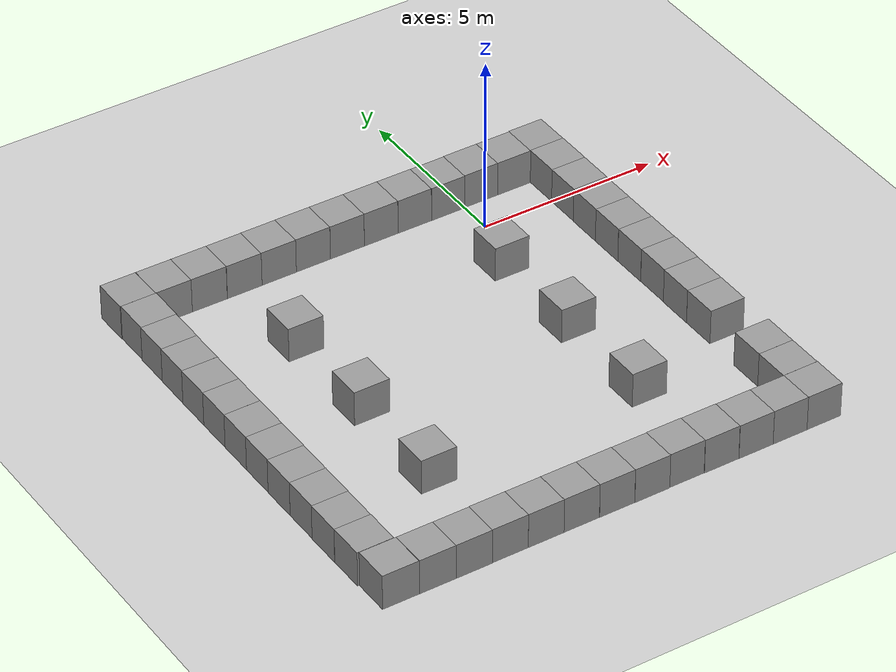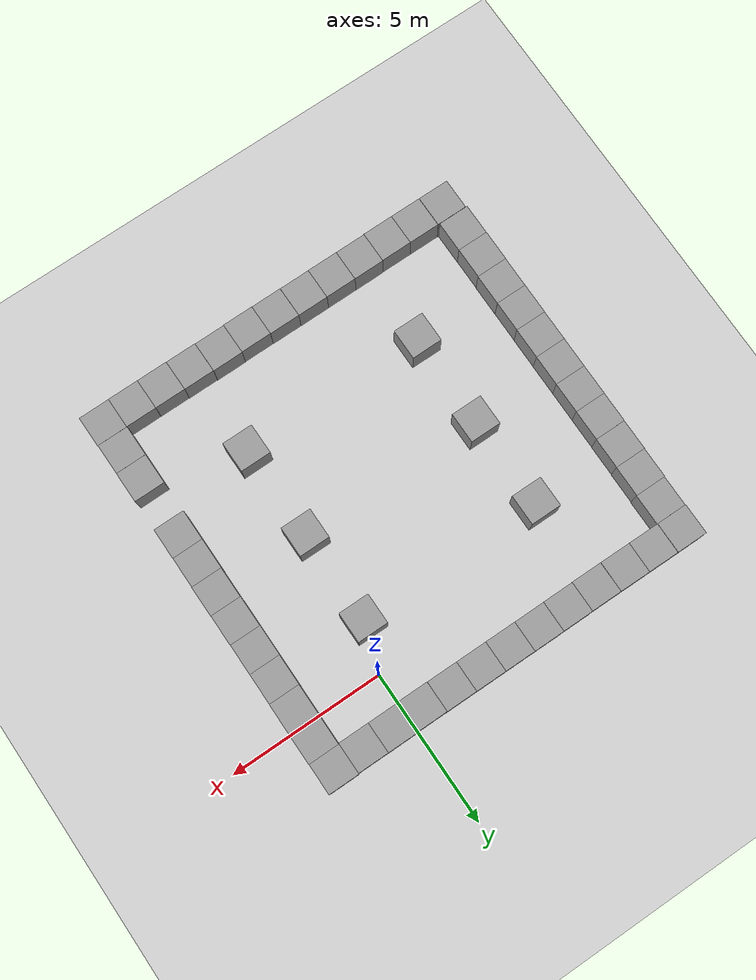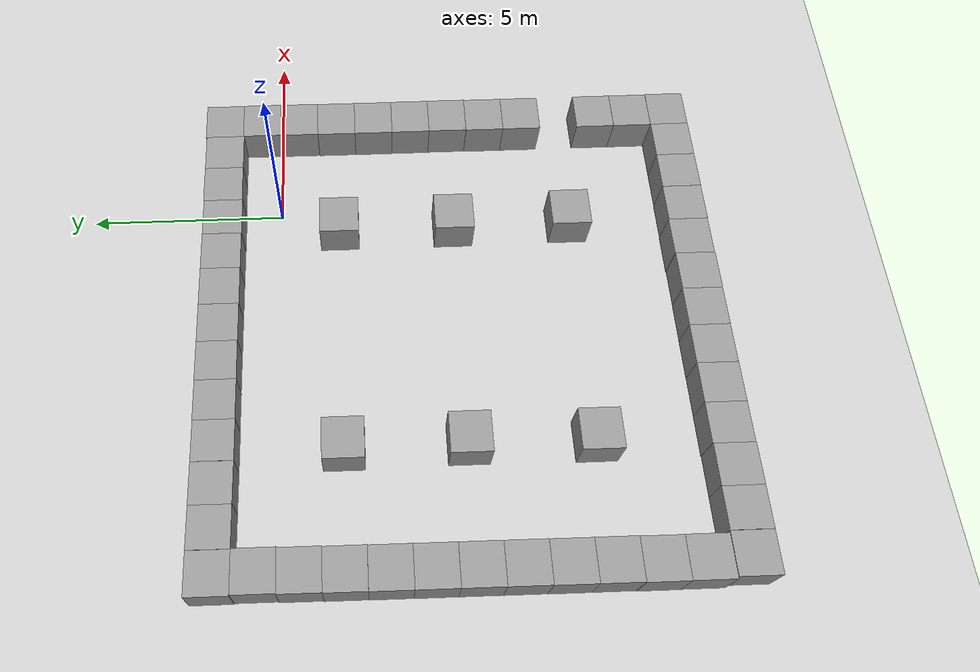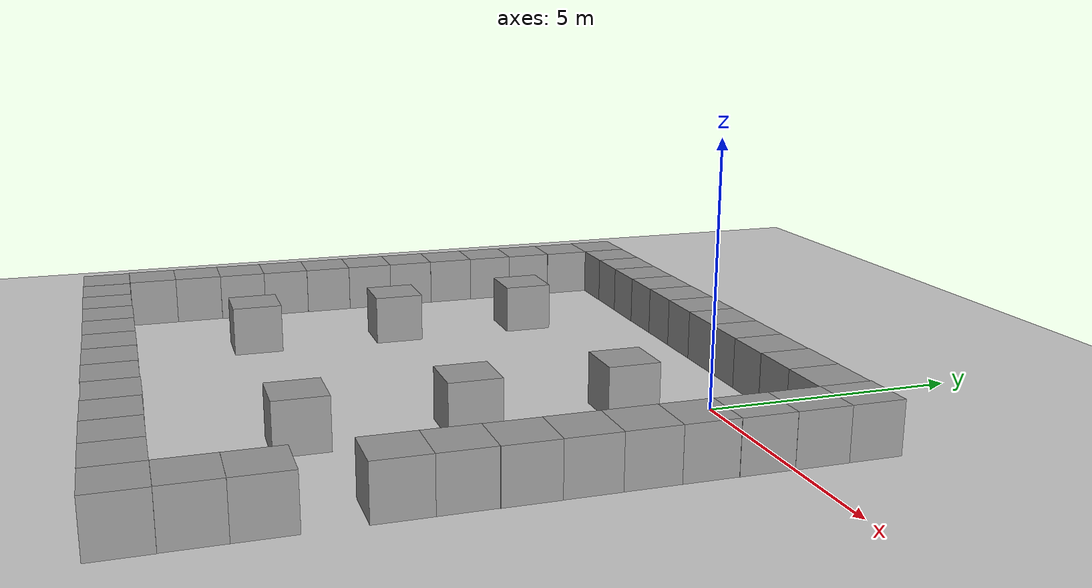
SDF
<sdf version="1.6">
 <world name="default">
  <light name="sun" type="directional">
   <pose>0 0 10 0 -0 0</pose>
   <diffuse>0.8 0.8 0.8 1</diffuse>
   <specular>0.1 0.1 0.1 1</specular>
   <attenuation>
    <range>1000</range>
    <constant>0.9</constant>
    <linear>0.01</linear>
    <quadratic>0.001</quadratic>
   </attenuation>
   <direction>-0.5 0.5 -1</direction>
  </light>
  <model name="ground_plane">
   <static>1</static>
   <link name="link">
    <collision name="collision">
     <geometry><plane><normal>0 0 1</normal><size>100 100</size></plane></geometry>
     <surface><friction><ode><mu>100</mu><mu2>50</mu2></ode></friction></surface>
    </collision>
    <visual name="visual">
     <cast_shadows>0</cast_shadows>
     <geometry><plane><normal>0 0 1</normal><size>100 100</size></plane></geometry>
     <material>
      <script><uri>file://media/materials/scripts/gazebo.material</uri><name>Gazebo/Grey</name></script>
     </material>
    </visual>
   </link>
  </model>
  <gravity>0 0 -9.8</gravity>
  <magnetic_field>6e-06 2.3e-05 -4.2e-05</magnetic_field>
  <atmosphere type="adiabatic"/>
  <physics name="default_physics" default="0" type="ode">
   <max_step_size>0.001</max_step_size>
   <real_time_factor>1</real_time_factor>
   <real_time_update_rate>1000</real_time_update_rate>
  </physics>
  <scene><ambient>0.4 0.4 0.4 1</ambient><background>0.7 0.7 0.7 1</background><shadows>1</shadows></scene>
  <spherical_coordinates>
   <surface_model>EARTH_WGS84</surface_model>
   <latitude_deg>0</latitude_deg>
   <longitude_deg>0</longitude_deg>
   <elevation>0</elevation>
   <heading_deg>0</heading_deg>
  </spherical_coordinates>
  <model name="unit_box_0_3">
   <pose>-0.485016 1.46415 0.499995 0 -1e-05 -0.000431</pose>
   <link name="link">
    <inertial>
     <mass>1</mass>
     <inertia>
      <ixx>0.166667</ixx>
      <ixy>0</ixy>
      <ixz>0</ixz>
      <iyy>0.166667</iyy>
      <iyz>0</iyz>
      <izz>0.166667</izz>
     </inertia>
    </inertial>
    <collision name="collision"><geometry><box><size>1 1 1</size></box></geometry></collision>
    <visual name="visual">
     <geometry><box><size>1 1 1</size></box></geometry>
     <material>
      <script><name>Gazebo/Grey</name><uri>file://media/materials/scripts/gazebo.material</uri></script>
     </material>
    </visual>
   </link>
  </model>
  <model name="unit_box_0_4">
   <pose>0.515013 1.47741 0.499995 0 1e-05 -0.000414</pose>
   <link name="link">
    <inertial>
     <mass>1</mass>
     <inertia>
      <ixx>0.166667</ixx>
      <ixy>0</ixy>
      <ixz>0</ixz>
      <iyy>0.166667</iyy>
      <iyz>0</iyz>
      <izz>0.166667</izz>
     </inertia>
    </inertial>
    <collision name="collision"><geometry><box><size>1 1 1</size></box></geometry></collision>
    <visual name="visual">
     <geometry><box><size>1 1 1</size></box></geometry>
     <material>
      <script><name>Gazebo/Grey</name><uri>file://media/materials/scripts/gazebo.material</uri></script>
     </material>
    </visual>
   </link>
  </model>
  <model name="unit_box_0_5">
   <pose>1.515 1.47529 0.499995 0 -1e-05 -0.000414</pose>
   <link name="link">
    <inertial>
     <mass>1</mass>
     <inertia>
      <ixx>0.166667</ixx>
      <ixy>0</ixy>
      <ixz>0</ixz>
      <iyy>0.166667</iyy>
      <iyz>0</iyz>
      <izz>0.166667</izz>
     </inertia>
    </inertial>
    <collision name="collision"><geometry><box><size>1 1 1</size></box></geometry></collision>
    <visual name="visual">
     <geometry><box><size>1 1 1</size></box></geometry>
     <material>
      <script><name>Gazebo/Grey</name><uri>file://media/materials/scripts/gazebo.material</uri></script>
     </material>
    </visual>
   </link>
  </model>
  <model name="unit_box_0_6">
   <pose>-1.48541 1.46962 0.499995 -1e-05 -0 -0.001228</pose>
   <link name="link">
    <inertial>
     <mass>1</mass>
     <inertia>
      <ixx>0.166667</ixx>
      <ixy>0</ixy>
      <ixz>0</ixz>
      <iyy>0.166667</iyy>
      <iyz>0</iyz>
      <izz>0.166667</izz>
     </inertia>
    </inertial>
    <collision name="collision"><geometry><box><size>1 1 1</size></box></geometry></collision>
    <visual name="visual">
     <geometry><box><size>1 1 1</size></box></geometry>
     <material>
      <script><name>Gazebo/Grey</name><uri>file://media/materials/scripts/gazebo.material</uri></script>
     </material>
    </visual>
   </link>
  </model>
  <model name="unit_box_0_7">
   <pose>-2.48543 1.47308 0.5 0 0 -0.001272</pose>
   <link name="link">
    <inertial>
     <mass>1</mass>
     <inertia>
      <ixx>0.166667</ixx>
      <ixy>0</ixy>
      <ixz>0</ixz>
      <iyy>0.166667</iyy>
      <iyz>0</iyz>
      <izz>0.166667</izz>
     </inertia>
    </inertial>
    <collision name="collision"><geometry><box><size>1 1 1</size></box></geometry></collision>
    <visual name="visual">
     <geometry><box><size>1 1 1</size></box></geometry>
     <material>
      <script><name>Gazebo/Grey</name><uri>file://media/materials/scripts/gazebo.material</uri></script>
     </material>
    </visual>
   </link>
  </model>
  <model name="unit_box_0_8">
   <pose>2.51507 1.4973 0.5 0 0 -0.00034</pose>
   <link name="link">
    <inertial>
     <mass>1</mass>
     <inertia>
      <ixx>0.166667</ixx>
      <ixy>0</ixy>
      <ixz>0</ixz>
      <iyy>0.166667</iyy>
      <iyz>0</iyz>
      <izz>0.166667</izz>
     </inertia>
    </inertial>
    <collision name="collision"><geometry><box><size>1 1 1</size></box></geometry></collision>
    <visual name="visual">
     <geometry><box><size>1 1 1</size></box></geometry>
     <material>
      <script><name>Gazebo/Grey</name><uri>file://media/materials/scripts/gazebo.material</uri></script>
     </material>
    </visual>
   </link>
  </model>
  <model name="unit_box_0_9">
   <pose>-3.48544 1.47527 0.499995 -1e-05 -0 -0.001286</pose>
   <link name="link">
    <inertial>
     <mass>1</mass>
     <inertia>
      <ixx>0.166667</ixx>
      <ixy>0</ixy>
      <ixz>0</ixz>
      <iyy>0.166667</iyy>
      <iyz>0</iyz>
      <izz>0.166667</izz>
     </inertia>
    </inertial>
    <collision name="collision"><geometry><box><size>1 1 1</size></box></geometry></collision>
    <visual name="visual">
     <geometry><box><size>1 1 1</size></box></geometry>
     <material>
      <script><name>Gazebo/Grey</name><uri>file://media/materials/scripts/gazebo.material</uri></script>
     </material>
    </visual>
   </link>
  </model>
  <model name="unit_box_0_10">
   <pose>-4.48545 1.47864 0.499995 1e-05 0 -0.001306</pose>
   <link name="link">
    <inertial>
     <mass>1</mass>
     <inertia>
      <ixx>0.166667</ixx>
      <ixy>0</ixy>
      <ixz>0</ixz>
      <iyy>0.166667</iyy>
      <iyz>0</iyz>
      <izz>0.166667</izz>
     </inertia>
    </inertial>
    <collision name="collision"><geometry><box><size>1 1 1</size></box></geometry></collision>
    <visual name="visual">
     <geometry><box><size>1 1 1</size></box></geometry>
     <material>
      <script><name>Gazebo/Grey</name><uri>file://media/materials/scripts/gazebo.material</uri></script>
     </material>
    </visual>
   </link>
  </model>
  <model name="unit_box_0_11">
   <pose>-5.48546 1.47609 0.499995 -0 1e-05 -0.001308</pose>
   <link name="link">
    <inertial>
     <mass>1</mass>
     <inertia>
      <ixx>0.166667</ixx>
      <ixy>0</ixy>
      <ixz>0</ixz>
      <iyy>0.166667</iyy>
      <iyz>0</iyz>
      <izz>0.166667</izz>
     </inertia>
    </inertial>
    <collision name="collision"><geometry><box><size>1 1 1</size></box></geometry></collision>
    <visual name="visual">
     <geometry><box><size>1 1 1</size></box></geometry>
     <material>
      <script><name>Gazebo/Grey</name><uri>file://media/materials/scripts/gazebo.material</uri></script>
     </material>
    </visual>
   </link>
  </model>
  <model name="unit_box_0_28">
   <pose>2.5108 -6.50287 0.499995 0 -1e-05 -8.8e-05</pose>
   <link name="link">
    <inertial>
     <mass>1</mass>
     <inertia>
      <ixx>0.166667</ixx>
      <ixy>0</ixy>
      <ixz>0</ixz>
      <iyy>0.166667</iyy>
      <iyz>0</iyz>
      <izz>0.166667</izz>
     </inertia>
    </inertial>
    <collision name="collision"><geometry><box><size>1 1 1</size></box></geometry></collision>
    <visual name="visual">
     <geometry><box><size>1 1 1</size></box></geometry>
     <material>
      <script><name>Gazebo/Grey</name><uri>file://media/materials/scripts/gazebo.material</uri></script>
     </material>
    </visual>
   </link>
  </model>
  <model name="unit_box_0_29">
   <pose>2.5083 -5.50283 0.5 0 0 -0.000153</pose>
   <link name="link">
    <inertial>
     <mass>1</mass>
     <inertia>
      <ixx>0.166667</ixx>
      <ixy>0</ixy>
      <ixz>0</ixz>
      <iyy>0.166667</iyy>
      <iyz>0</iyz>
      <izz>0.166667</izz>
     </inertia>
    </inertial>
    <collision name="collision"><geometry><box><size>1 1 1</size></box></geometry></collision>
    <visual name="visual">
     <geometry><box><size>1 1 1</size></box></geometry>
     <material>
      <script><name>Gazebo/Grey</name><uri>file://media/materials/scripts/gazebo.material</uri></script>
     </material>
    </visual>
   </link>
  </model>
  <model name="unit_box_0_30">
   <pose>2.5175 -4.50282 0.5 0 0 -0.000175</pose>
   <link name="link">
    <inertial>
     <mass>1</mass>
     <inertia>
      <ixx>0.166667</ixx>
      <ixy>0</ixy>
      <ixz>0</ixz>
      <iyy>0.166667</iyy>
      <iyz>0</iyz>
      <izz>0.166667</izz>
     </inertia>
    </inertial>
    <collision name="collision"><geometry><box><size>1 1 1</size></box></geometry></collision>
    <visual name="visual">
     <geometry><box><size>1 1 1</size></box></geometry>
     <material>
      <script><name>Gazebo/Grey</name><uri>file://media/materials/scripts/gazebo.material</uri></script>
     </material>
    </visual>
   </link>
  </model>
  <model name="unit_box_0_31">
   <pose>2.51174 -3.50281 0.499996 -9e-06 -0 -0.000175</pose>
   <link name="link">
    <inertial>
     <mass>1</mass>
     <inertia>
      <ixx>0.166667</ixx>
      <ixy>0</ixy>
      <ixz>0</ixz>
      <iyy>0.166667</iyy>
      <iyz>0</iyz>
      <izz>0.166667</izz>
     </inertia>
    </inertial>
    <collision name="collision"><geometry><box><size>1 1 1</size></box></geometry></collision>
    <visual name="visual">
     <geometry><box><size>1 1 1</size></box></geometry>
     <material>
      <script><name>Gazebo/Grey</name><uri>file://media/materials/scripts/gazebo.material</uri></script>
     </material>
    </visual>
   </link>
  </model>
  <model name="unit_box_0_32">
   <pose>2.50817 -2.50281 0.499995 -1e-05 -0 -0.000176</pose>
   <link name="link">
    <inertial>
     <mass>1</mass>
     <inertia>
      <ixx>0.166667</ixx>
      <ixy>0</ixy>
      <ixz>0</ixz>
      <iyy>0.166667</iyy>
      <iyz>0</iyz>
      <izz>0.166667</izz>
     </inertia>
    </inertial>
    <collision name="collision"><geometry><box><size>1 1 1</size></box></geometry></collision>
    <visual name="visual">
     <geometry><box><size>1 1 1</size></box></geometry>
     <material>
      <script><name>Gazebo/Grey</name><uri>file://media/materials/scripts/gazebo.material</uri></script>
     </material>
    </visual>
   </link>
  </model>
  <model name="unit_box_0_34">
   <pose>2.50946 -1.50281 0.499995 1e-05 -0 -0.00017</pose>
   <link name="link">
    <inertial>
     <mass>1</mass>
     <inertia>
      <ixx>0.166667</ixx>
      <ixy>0</ixy>
      <ixz>0</ixz>
      <iyy>0.166667</iyy>
      <iyz>0</iyz>
      <izz>0.166667</izz>
     </inertia>
    </inertial>
    <collision name="collision"><geometry><box><size>1 1 1</size></box></geometry></collision>
    <visual name="visual">
     <geometry><box><size>1 1 1</size></box></geometry>
     <material>
      <script><name>Gazebo/Grey</name><uri>file://media/materials/scripts/gazebo.material</uri></script>
     </material>
    </visual>
   </link>
  </model>
  <model name="unit_box_0_35">
   <pose>2.51729 -0.5028 0.499995 -0 1e-05 -0.000172</pose>
   <link name="link">
    <inertial>
     <mass>1</mass>
     <inertia>
      <ixx>0.166667</ixx>
      <ixy>0</ixy>
      <ixz>0</ixz>
      <iyy>0.166667</iyy>
      <iyz>0</iyz>
      <izz>0.166667</izz>
     </inertia>
    </inertial>
    <collision name="collision"><geometry><box><size>1 1 1</size></box></geometry></collision>
    <visual name="visual">
     <geometry><box><size>1 1 1</size></box></geometry>
     <material>
      <script><name>Gazebo/Grey</name><uri>file://media/materials/scripts/gazebo.material</uri></script>
     </material>
    </visual>
   </link>
  </model>
  <model name="unit_box_0_36">
   <pose>2.52059 0.497225 0.5 0 0 -0.000211</pose>
   <link name="link">
    <inertial>
     <mass>1</mass>
     <inertia>
      <ixx>0.166667</ixx>
      <ixy>0</ixy>
      <ixz>0</ixz>
      <iyy>0.166667</iyy>
      <iyz>0</iyz>
      <izz>0.166667</izz>
     </inertia>
    </inertial>
    <collision name="collision"><geometry><box><size>1 1 1</size></box></geometry></collision>
    <visual name="visual">
     <geometry><box><size>1 1 1</size></box></geometry>
     <material>
      <script><name>Gazebo/Grey</name><uri>file://media/materials/scripts/gazebo.material</uri></script>
     </material>
    </visual>
   </link>
  </model>
  <model name="unit_box_0">
   <pose>-0.515203 -1.52722 0.499995 0 -1e-05 5e-06</pose>
   <link name="link">
    <inertial>
     <mass>1</mass>
     <inertia>
      <ixx>0.166667</ixx>
      <ixy>0</ixy>
      <ixz>0</ixz>
      <iyy>0.166667</iyy>
      <iyz>0</iyz>
      <izz>0.166667</izz>
     </inertia>
    </inertial>
    <collision name="collision"><geometry><box><size>1 1 1</size></box></geometry></collision>
    <visual name="visual">
     <geometry><box><size>1 1 1</size></box></geometry>
     <material>
      <script><name>Gazebo/Grey</name><uri>file://media/materials/scripts/gazebo.material</uri></script>
     </material>
    </visual>
   </link>
  </model>
  <model name="unit_box_1">
   <pose>-0.520417 -4.49983 0.499995 0 -1e-05 5e-06</pose>
   <link name="link">
    <inertial>
     <mass>1</mass>
     <inertia>
      <ixx>0.166667</ixx>
      <ixy>0</ixy>
      <ixz>0</ixz>
      <iyy>0.166667</iyy>
      <iyz>0</iyz>
      <izz>0.166667</izz>
     </inertia>
    </inertial>
    <collision name="collision"><geometry><box><size>1 1 1</size></box></geometry></collision>
    <visual name="visual">
     <geometry><box><size>1 1 1</size></box></geometry>
     <material>
      <script><name>Gazebo/Grey</name><uri>file://media/materials/scripts/gazebo.material</uri></script>
     </material>
    </visual>
   </link>
  </model>
  <model name="unit_box_2">
   <pose>-0.495703 -7.5225 0.499995 1e-05 -0 0.000151</pose>
   <link name="link">
    <inertial>
     <mass>1</mass>
     <inertia>
      <ixx>0.166667</ixx>
      <ixy>0</ixy>
      <ixz>0</ixz>
      <iyy>0.166667</iyy>
      <iyz>0</iyz>
      <izz>0.166667</izz>
     </inertia>
    </inertial>
    <collision name="collision"><geometry><box><size>1 1 1</size></box></geometry></collision>
    <visual name="visual">
     <geometry><box><size>1 1 1</size></box></geometry>
     <material>
      <script><name>Gazebo/Grey</name><uri>file://media/materials/scripts/gazebo.material</uri></script>
     </material>
    </visual>
   </link>
  </model>
  <model name="unit_box_4">
   <pose>-1.47392 -10.5015 0.499995 0 -1e-05 0.003189</pose>
   <link name="link">
    <inertial>
     <mass>1</mass>
     <inertia>
      <ixx>0.166667</ixx>
      <ixy>0</ixy>
      <ixz>0</ixz>
      <iyy>0.166667</iyy>
      <iyz>0</iyz>
      <izz>0.166667</izz>
     </inertia>
    </inertial>
    <collision name="collision"><geometry><box><size>1 1 1</size></box></geometry></collision>
    <visual name="visual">
     <geometry><box><size>1 1 1</size></box></geometry>
     <material>
      <script><name>Gazebo/Grey</name><uri>file://media/materials/scripts/gazebo.material</uri></script>
     </material>
    </visual>
   </link>
  </model>
  <model name="unit_box_5_0">
   <pose>-0.473788 -10.5096 0.499995 0 -1e-05 0.003101</pose>
   <link name="link">
    <inertial>
     <mass>1</mass>
     <inertia>
      <ixx>0.166667</ixx>
      <ixy>0</ixy>
      <ixz>0</ixz>
      <iyy>0.166667</iyy>
      <iyz>0</iyz>
      <izz>0.166667</izz>
     </inertia>
    </inertial>
    <collision name="collision"><geometry><box><size>1 1 1</size></box></geometry></collision>
    <visual name="visual">
     <geometry><box><size>1 1 1</size></box></geometry>
     <material>
      <script><name>Gazebo/Grey</name><uri>file://media/materials/scripts/gazebo.material</uri></script>
     </material>
    </visual>
   </link>
  </model>
  <model name="unit_box_5_1">
   <pose>0.526444 -10.5137 0.499995 1e-05 -0 0.003186</pose>
   <link name="link">
    <inertial>
     <mass>1</mass>
     <inertia>
      <ixx>0.166667</ixx>
      <ixy>0</ixy>
      <ixz>0</ixz>
      <iyy>0.166667</iyy>
      <iyz>0</iyz>
      <izz>0.166667</izz>
     </inertia>
    </inertial>
    <collision name="collision"><geometry><box><size>1 1 1</size></box></geometry></collision>
    <visual name="visual">
     <geometry><box><size>1 1 1</size></box></geometry>
     <material>
      <script><name>Gazebo/Grey</name><uri>file://media/materials/scripts/gazebo.material</uri></script>
     </material>
    </visual>
   </link>
  </model>
  <model name="unit_box_5_2">
   <pose>1.52652 -10.5118 0.499995 -1e-05 -0 0.003169</pose>
   <link name="link">
    <inertial>
     <mass>1</mass>
     <inertia>
      <ixx>0.166667</ixx>
      <ixy>0</ixy>
      <ixz>0</ixz>
      <iyy>0.166667</iyy>
      <iyz>0</iyz>
      <izz>0.166667</izz>
     </inertia>
    </inertial>
    <collision name="collision"><geometry><box><size>1 1 1</size></box></geometry></collision>
    <visual name="visual">
     <geometry><box><size>1 1 1</size></box></geometry>
     <material>
      <script><name>Gazebo/Grey</name><uri>file://media/materials/scripts/gazebo.material</uri></script>
     </material>
    </visual>
   </link>
  </model>
  <model name="unit_box_5_3">
   <pose>2.51398 -8.50358 0.499995 -0 -1e-05 0.001292</pose>
   <link name="link">
    <inertial>
     <mass>1</mass>
     <inertia>
      <ixx>0.166667</ixx>
      <ixy>0</ixy>
      <ixz>0</ixz>
      <iyy>0.166667</iyy>
      <iyz>0</iyz>
      <izz>0.166667</izz>
     </inertia>
    </inertial>
    <collision name="collision"><geometry><box><size>1 1 1</size></box></geometry></collision>
    <visual name="visual">
     <geometry><box><size>1 1 1</size></box></geometry>
     <material>
      <script><name>Gazebo/Grey</name><uri>file://media/materials/scripts/gazebo.material</uri></script>
     </material>
    </visual>
   </link>
  </model>
  <model name="unit_box_5_4">
   <pose>-2.47389 -10.5161 0.499995 0 -1e-05 0.003189</pose>
   <link name="link">
    <inertial>
     <mass>1</mass>
     <inertia>
      <ixx>0.166667</ixx>
      <ixy>0</ixy>
      <ixz>0</ixz>
      <iyy>0.166667</iyy>
      <iyz>0</iyz>
      <izz>0.166667</izz>
     </inertia>
    </inertial>
    <collision name="collision"><geometry><box><size>1 1 1</size></box></geometry></collision>
    <visual name="visual">
     <geometry><box><size>1 1 1</size></box></geometry>
     <material>
      <script><name>Gazebo/Grey</name><uri>file://media/materials/scripts/gazebo.material</uri></script>
     </material>
    </visual>
   </link>
  </model>
  <model name="unit_box_5_5">
   <pose>2.5146 -9.50428 0.499995 0 -1e-05 0.002692</pose>
   <link name="link">
    <inertial>
     <mass>1</mass>
     <inertia>
      <ixx>0.166667</ixx>
      <ixy>0</ixy>
      <ixz>0</ixz>
      <iyy>0.166667</iyy>
      <iyz>0</iyz>
      <izz>0.166667</izz>
     </inertia>
    </inertial>
    <collision name="collision"><geometry><box><size>1 1 1</size></box></geometry></collision>
    <visual name="visual">
     <geometry><box><size>1 1 1</size></box></geometry>
     <material>
      <script><name>Gazebo/Grey</name><uri>file://media/materials/scripts/gazebo.material</uri></script>
     </material>
    </visual>
   </link>
  </model>
  <model name="unit_box_5_6">
   <pose>2.52662 -10.5055 0.499995 1e-05 -0 0.003368</pose>
   <link name="link">
    <inertial>
     <mass>1</mass>
     <inertia>
      <ixx>0.166667</ixx>
      <ixy>0</ixy>
      <ixz>0</ixz>
      <iyy>0.166667</iyy>
      <iyz>0</iyz>
      <izz>0.166667</izz>
     </inertia>
    </inertial>
    <collision name="collision"><geometry><box><size>1 1 1</size></box></geometry></collision>
    <visual name="visual">
     <geometry><box><size>1 1 1</size></box></geometry>
     <material>
      <script><name>Gazebo/Grey</name><uri>file://media/materials/scripts/gazebo.material</uri></script>
     </material>
    </visual>
   </link>
  </model>
  <model name="unit_box_5_7">
   <pose>-6.48559 1.47191 0.499995 0 -1e-05 -0.001453</pose>
   <link name="link">
    <inertial>
     <mass>1</mass>
     <inertia>
      <ixx>0.166667</ixx>
      <ixy>0</ixy>
      <ixz>0</ixz>
      <iyy>0.166667</iyy>
      <iyz>0</iyz>
      <izz>0.166667</izz>
     </inertia>
    </inertial>
    <collision name="collision"><geometry><box><size>1 1 1</size></box></geometry></collision>
    <visual name="visual">
     <geometry><box><size>1 1 1</size></box></geometry>
     <material>
      <script><name>Gazebo/Grey</name><uri>file://media/materials/scripts/gazebo.material</uri></script>
     </material>
    </visual>
   </link>
  </model>
  <model name="unit_box_5_8">
   <pose>-7.48806 1.47602 0.499995 0 1e-05 -0.006394</pose>
   <link name="link">
    <inertial>
     <mass>1</mass>
     <inertia>
      <ixx>0.166667</ixx>
      <ixy>0</ixy>
      <ixz>0</ixz>
      <iyy>0.166667</iyy>
      <iyz>0</iyz>
      <izz>0.166667</izz>
     </inertia>
    </inertial>
    <collision name="collision"><geometry><box><size>1 1 1</size></box></geometry></collision>
    <visual name="visual">
     <geometry><box><size>1 1 1</size></box></geometry>
     <material>
      <script><name>Gazebo/Grey</name><uri>file://media/materials/scripts/gazebo.material</uri></script>
     </material>
    </visual>
   </link>
  </model>
  <model name="unit_box_5_9">
   <pose>-8.48807 1.4804 0.499995 0 1e-05 -0.006392</pose>
   <link name="link">
    <inertial>
     <mass>1</mass>
     <inertia>
      <ixx>0.166667</ixx>
      <ixy>0</ixy>
      <ixz>0</ixz>
      <iyy>0.166667</iyy>
      <iyz>0</iyz>
      <izz>0.166667</izz>
     </inertia>
    </inertial>
    <collision name="collision"><geometry><box><size>1 1 1</size></box></geometry></collision>
    <visual name="visual">
     <geometry><box><size>1 1 1</size></box></geometry>
     <material>
      <script><name>Gazebo/Grey</name><uri>file://media/materials/scripts/gazebo.material</uri></script>
     </material>
    </visual>
   </link>
  </model>
  <model name="unit_box_5_10">
   <pose>-9.49113 1.48363 0.499995 -0 -1e-05 -0.000285</pose>
   <link name="link">
    <inertial>
     <mass>1</mass>
     <inertia>
      <ixx>0.166667</ixx>
      <ixy>0</ixy>
      <ixz>0</ixz>
      <iyy>0.166667</iyy>
      <iyz>0</iyz>
      <izz>0.166667</izz>
     </inertia>
    </inertial>
    <collision name="collision"><geometry><box><size>1 1 1</size></box></geometry></collision>
    <visual name="visual">
     <geometry><box><size>1 1 1</size></box></geometry>
     <material>
      <script><name>Gazebo/Grey</name><uri>file://media/materials/scripts/gazebo.material</uri></script>
     </material>
    </visual>
   </link>
  </model>
  <model name="unit_box_5_11">
   <pose>-3.47405 -10.5125 0.499995 -1e-05 0 0.0031</pose>
   <link name="link">
    <inertial>
     <mass>1</mass>
     <inertia>
      <ixx>0.166667</ixx>
      <ixy>0</ixy>
      <ixz>0</ixz>
      <iyy>0.166667</iyy>
      <iyz>0</iyz>
      <izz>0.166667</izz>
     </inertia>
    </inertial>
    <collision name="collision"><geometry><box><size>1 1 1</size></box></geometry></collision>
    <visual name="visual">
     <geometry><box><size>1 1 1</size></box></geometry>
     <material>
      <script><name>Gazebo/Grey</name><uri>file://media/materials/scripts/gazebo.material</uri></script>
     </material>
    </visual>
   </link>
  </model>
  <model name="unit_box_5_12">
   <pose>-4.47461 -10.5113 0.499995 0 1e-05 0.002114</pose>
   <link name="link">
    <inertial>
     <mass>1</mass>
     <inertia>
      <ixx>0.166667</ixx>
      <ixy>0</ixy>
      <ixz>0</ixz>
      <iyy>0.166667</iyy>
      <iyz>0</iyz>
      <izz>0.166667</izz>
     </inertia>
    </inertial>
    <collision name="collision"><geometry><box><size>1 1 1</size></box></geometry></collision>
    <visual name="visual">
     <geometry><box><size>1 1 1</size></box></geometry>
     <material>
      <script><name>Gazebo/Grey</name><uri>file://media/materials/scripts/gazebo.material</uri></script>
     </material>
    </visual>
   </link>
  </model>
  <model name="unit_box_5_13">
   <pose>-5.4749 -10.5159 0.499995 0 -1e-05 0.001543</pose>
   <link name="link">
    <inertial>
     <mass>1</mass>
     <inertia>
      <ixx>0.166667</ixx>
      <ixy>0</ixy>
      <ixz>0</ixz>
      <iyy>0.166667</iyy>
      <iyz>0</iyz>
      <izz>0.166667</izz>
     </inertia>
    </inertial>
    <collision name="collision"><geometry><box><size>1 1 1</size></box></geometry></collision>
    <visual name="visual">
     <geometry><box><size>1 1 1</size></box></geometry>
     <material>
      <script><name>Gazebo/Grey</name><uri>file://media/materials/scripts/gazebo.material</uri></script>
     </material>
    </visual>
   </link>
  </model>
  <model name="unit_box_5_14">
   <pose>-6.47493 -10.5167 0.499995 0 1e-05 0.001475</pose>
   <link name="link">
    <inertial>
     <mass>1</mass>
     <inertia>
      <ixx>0.166667</ixx>
      <ixy>0</ixy>
      <ixz>0</ixz>
      <iyy>0.166667</iyy>
      <iyz>0</iyz>
      <izz>0.166667</izz>
     </inertia>
    </inertial>
    <collision name="collision"><geometry><box><size>1 1 1</size></box></geometry></collision>
    <visual name="visual">
     <geometry><box><size>1 1 1</size></box></geometry>
     <material>
      <script><name>Gazebo/Grey</name><uri>file://media/materials/scripts/gazebo.material</uri></script>
     </material>
    </visual>
   </link>
  </model>
  <model name="unit_box_5_15">
   <pose>-7.47495 -10.5285 0.499995 0 -1e-05 0.001472</pose>
   <link name="link">
    <inertial>
     <mass>1</mass>
     <inertia>
      <ixx>0.166667</ixx>
      <ixy>0</ixy>
      <ixz>0</ixz>
      <iyy>0.166667</iyy>
      <iyz>0</iyz>
      <izz>0.166667</izz>
     </inertia>
    </inertial>
    <collision name="collision"><geometry><box><size>1 1 1</size></box></geometry></collision>
    <visual name="visual">
     <geometry><box><size>1 1 1</size></box></geometry>
     <material>
      <script><name>Gazebo/Grey</name><uri>file://media/materials/scripts/gazebo.material</uri></script>
     </material>
    </visual>
   </link>
  </model>
  <model name="unit_box_5_16">
   <pose>-8.47495 -10.5288 0.499995 -0 1e-05 0.001472</pose>
   <link name="link">
    <inertial>
     <mass>1</mass>
     <inertia>
      <ixx>0.166667</ixx>
      <ixy>0</ixy>
      <ixz>0</ixz>
      <iyy>0.166667</iyy>
      <iyz>0</iyz>
      <izz>0.166667</izz>
     </inertia>
    </inertial>
    <collision name="collision"><geometry><box><size>1 1 1</size></box></geometry></collision>
    <visual name="visual">
     <geometry><box><size>1 1 1</size></box></geometry>
     <material>
      <script><name>Gazebo/Grey</name><uri>file://media/materials/scripts/gazebo.material</uri></script>
     </material>
    </visual>
   </link>
  </model>
  <model name="unit_box_5_17">
   <pose>-9.47978 -10.5268 0.499995 1e-05 -0 -5e-06</pose>
   <link name="link">
    <inertial>
     <mass>1</mass>
     <inertia>
      <ixx>0.166667</ixx>
      <ixy>0</ixy>
      <ixz>0</ixz>
      <iyy>0.166667</iyy>
      <iyz>0</iyz>
      <izz>0.166667</izz>
     </inertia>
    </inertial>
    <collision name="collision"><geometry><box><size>1 1 1</size></box></geometry></collision>
    <visual name="visual">
     <geometry><box><size>1 1 1</size></box></geometry>
     <material>
      <script><name>Gazebo/Grey</name><uri>file://media/materials/scripts/gazebo.material</uri></script>
     </material>
    </visual>
   </link>
  </model>
  <model name="unit_box_5_18">
   <pose>-9.52679 -9.51802 0.499995 -0 1e-05 -0.00036</pose>
   <link name="link">
    <inertial>
     <mass>1</mass>
     <inertia>
      <ixx>0.166667</ixx>
      <ixy>0</ixy>
      <ixz>0</ixz>
      <iyy>0.166667</iyy>
      <iyz>0</iyz>
      <izz>0.166667</izz>
     </inertia>
    </inertial>
    <collision name="collision"><geometry><box><size>1 1 1</size></box></geometry></collision>
    <visual name="visual">
     <geometry><box><size>1 1 1</size></box></geometry>
     <material>
      <script><name>Gazebo/Grey</name><uri>file://media/materials/scripts/gazebo.material</uri></script>
     </material>
    </visual>
   </link>
  </model>
  <model name="unit_box_5_19">
   <pose>-9.53052 -8.51802 0.499995 0 -1e-05 -0.000361</pose>
   <link name="link">
    <inertial>
     <mass>1</mass>
     <inertia>
      <ixx>0.166667</ixx>
      <ixy>0</ixy>
      <ixz>0</ixz>
      <iyy>0.166667</iyy>
      <iyz>0</iyz>
      <izz>0.166667</izz>
     </inertia>
    </inertial>
    <collision name="collision"><geometry><box><size>1 1 1</size></box></geometry></collision>
    <visual name="visual">
     <geometry><box><size>1 1 1</size></box></geometry>
     <material>
      <script><name>Gazebo/Grey</name><uri>file://media/materials/scripts/gazebo.material</uri></script>
     </material>
    </visual>
   </link>
  </model>
  <model name="unit_box_5_20">
   <pose>-9.52037 -7.51802 0.499995 0 -1e-05 -0.000364</pose>
   <link name="link">
    <inertial>
     <mass>1</mass>
     <inertia>
      <ixx>0.166667</ixx>
      <ixy>0</ixy>
      <ixz>0</ixz>
      <iyy>0.166667</iyy>
      <iyz>0</iyz>
      <izz>0.166667</izz>
     </inertia>
    </inertial>
    <collision name="collision"><geometry><box><size>1 1 1</size></box></geometry></collision>
    <visual name="visual">
     <geometry><box><size>1 1 1</size></box></geometry>
     <material>
      <script><name>Gazebo/Grey</name><uri>file://media/materials/scripts/gazebo.material</uri></script>
     </material>
    </visual>
   </link>
  </model>
  <model name="unit_box_5_21">
   <pose>-9.52083 -6.51801 0.499995 1e-05 0 -0.00037</pose>
   <link name="link">
    <inertial>
     <mass>1</mass>
     <inertia>
      <ixx>0.166667</ixx>
      <ixy>0</ixy>
      <ixz>0</ixz>
      <iyy>0.166667</iyy>
      <iyz>0</iyz>
      <izz>0.166667</izz>
     </inertia>
    </inertial>
    <collision name="collision"><geometry><box><size>1 1 1</size></box></geometry></collision>
    <visual name="visual">
     <geometry><box><size>1 1 1</size></box></geometry>
     <material>
      <script><name>Gazebo/Grey</name><uri>file://media/materials/scripts/gazebo.material</uri></script>
     </material>
    </visual>
   </link>
  </model>
  <model name="unit_box_5_22">
   <pose>-9.51495 -5.518 0.5 0 0 -0.000376</pose>
   <link name="link">
    <inertial>
     <mass>1</mass>
     <inertia>
      <ixx>0.166667</ixx>
      <ixy>0</ixy>
      <ixz>0</ixz>
      <iyy>0.166667</iyy>
      <iyz>0</iyz>
      <izz>0.166667</izz>
     </inertia>
    </inertial>
    <collision name="collision"><geometry><box><size>1 1 1</size></box></geometry></collision>
    <visual name="visual">
     <geometry><box><size>1 1 1</size></box></geometry>
     <material>
      <script><name>Gazebo/Grey</name><uri>file://media/materials/scripts/gazebo.material</uri></script>
     </material>
    </visual>
   </link>
  </model>
  <model name="unit_box_5_23">
   <pose>-9.5121 -4.51792 0.5 0 0 -0.000358</pose>
   <link name="link">
    <inertial>
     <mass>1</mass>
     <inertia>
      <ixx>0.166667</ixx>
      <ixy>0</ixy>
      <ixz>0</ixz>
      <iyy>0.166667</iyy>
      <iyz>0</iyz>
      <izz>0.166667</izz>
     </inertia>
    </inertial>
    <collision name="collision"><geometry><box><size>1 1 1</size></box></geometry></collision>
    <visual name="visual">
     <geometry><box><size>1 1 1</size></box></geometry>
     <material>
      <script><name>Gazebo/Grey</name><uri>file://media/materials/scripts/gazebo.material</uri></script>
     </material>
    </visual>
   </link>
  </model>
  <model name="unit_box_5_24">
   <pose>-9.51117 -3.51754 0.499995 9e-06 -0 0.000409</pose>
   <link name="link">
    <inertial>
     <mass>1</mass>
     <inertia>
      <ixx>0.166667</ixx>
      <ixy>0</ixy>
      <ixz>0</ixz>
      <iyy>0.166667</iyy>
      <iyz>0</iyz>
      <izz>0.166667</izz>
     </inertia>
    </inertial>
    <collision name="collision"><geometry><box><size>1 1 1</size></box></geometry></collision>
    <visual name="visual">
     <geometry><box><size>1 1 1</size></box></geometry>
     <material>
      <script><name>Gazebo/Grey</name><uri>file://media/materials/scripts/gazebo.material</uri></script>
     </material>
    </visual>
   </link>
  </model>
  <model name="unit_box_5_25">
   <pose>-9.50814 -2.51753 0.499995 -1e-05 -0 0.000408</pose>
   <link name="link">
    <inertial>
     <mass>1</mass>
     <inertia>
      <ixx>0.166667</ixx>
      <ixy>0</ixy>
      <ixz>0</ixz>
      <iyy>0.166667</iyy>
      <iyz>0</iyz>
      <izz>0.166667</izz>
     </inertia>
    </inertial>
    <collision name="collision"><geometry><box><size>1 1 1</size></box></geometry></collision>
    <visual name="visual">
     <geometry><box><size>1 1 1</size></box></geometry>
     <material>
      <script><name>Gazebo/Grey</name><uri>file://media/materials/scripts/gazebo.material</uri></script>
     </material>
    </visual>
   </link>
  </model>
  <model name="unit_box_5_26">
   <pose>-9.50202 -1.5168 0.499995 -0 -1e-05 0.000481</pose>
   <link name="link">
    <inertial>
     <mass>1</mass>
     <inertia>
      <ixx>0.166667</ixx>
      <ixy>0</ixy>
      <ixz>0</ixz>
      <iyy>0.166667</iyy>
      <iyz>0</iyz>
      <izz>0.166667</izz>
     </inertia>
    </inertial>
    <collision name="collision"><geometry><box><size>1 1 1</size></box></geometry></collision>
    <visual name="visual">
     <geometry><box><size>1 1 1</size></box></geometry>
     <material>
      <script><name>Gazebo/Grey</name><uri>file://media/materials/scripts/gazebo.material</uri></script>
     </material>
    </visual>
   </link>
  </model>
  <model name="unit_box_5_27">
   <pose>-9.49201 -0.516771 0.499995 0 1e-05 0.000471</pose>
   <link name="link">
    <inertial>
     <mass>1</mass>
     <inertia>
      <ixx>0.166667</ixx>
      <ixy>0</ixy>
      <ixz>0</ixz>
      <iyy>0.166667</iyy>
      <iyz>0</iyz>
      <izz>0.166667</izz>
     </inertia>
    </inertial>
    <collision name="collision"><geometry><box><size>1 1 1</size></box></geometry></collision>
    <visual name="visual">
     <geometry><box><size>1 1 1</size></box></geometry>
     <material>
      <script><name>Gazebo/Grey</name><uri>file://media/materials/scripts/gazebo.material</uri></script>
     </material>
    </visual>
   </link>
  </model>
  <model name="unit_box_5_28">
   <pose>-9.47584 0.483342 0.499995 0 -1e-05 0.000261</pose>
   <link name="link">
    <inertial>
     <mass>1</mass>
     <inertia>
      <ixx>0.166667</ixx>
      <ixy>0</ixy>
      <ixz>0</ixz>
      <iyy>0.166667</iyy>
      <iyz>0</iyz>
      <izz>0.166667</izz>
     </inertia>
    </inertial>
    <collision name="collision"><geometry><box><size>1 1 1</size></box></geometry></collision>
    <visual name="visual">
     <geometry><box><size>1 1 1</size></box></geometry>
     <material>
      <script><name>Gazebo/Grey</name><uri>file://media/materials/scripts/gazebo.material</uri></script>
     </material>
    </visual>
   </link>
  </model>
  <model name="unit_box_5_30">
   <pose>-6.52071 -1.5247 0.499995 1e-05 -0 -5e-06</pose>
   <link name="link">
    <inertial>
     <mass>1</mass>
     <inertia>
      <ixx>0.166667</ixx>
      <ixy>0</ixy>
      <ixz>0</ixz>
      <iyy>0.166667</iyy>
      <iyz>0</iyz>
      <izz>0.166667</izz>
     </inertia>
    </inertial>
    <collision name="collision"><geometry><box><size>1 1 1</size></box></geometry></collision>
    <visual name="visual">
     <geometry><box><size>1 1 1</size></box></geometry>
     <material>
      <script><name>Gazebo/Grey</name><uri>file://media/materials/scripts/gazebo.material</uri></script>
     </material>
    </visual>
   </link>
  </model>
  <model name="unit_box_5_33">
   <pose>-6.48334 -4.49081 0.499995 0 -1e-05 0</pose>
   <link name="link">
    <inertial>
     <mass>1</mass>
     <inertia>
      <ixx>0.166667</ixx>
      <ixy>0</ixy>
      <ixz>0</ixz>
      <iyy>0.166667</iyy>
      <iyz>0</iyz>
      <izz>0.166667</izz>
     </inertia>
    </inertial>
    <collision name="collision"><geometry><box><size>1 1 1</size></box></geometry></collision>
    <visual name="visual">
     <geometry><box><size>1 1 1</size></box></geometry>
     <material>
      <script><name>Gazebo/Grey</name><uri>file://media/materials/scripts/gazebo.material</uri></script>
     </material>
    </visual>
   </link>
  </model>
  <model name="unit_box_5_34">
   <pose>-6.51437 -7.52585 0.499995 1e-05 -0 0</pose>
   <link name="link">
    <inertial>
     <mass>1</mass>
     <inertia>
      <ixx>0.166667</ixx>
      <ixy>0</ixy>
      <ixz>0</ixz>
      <iyy>0.166667</iyy>
      <iyz>0</iyz>
      <izz>0.166667</izz>
     </inertia>
    </inertial>
    <collision name="collision"><geometry><box><size>1 1 1</size></box></geometry></collision>
    <visual name="visual">
     <geometry><box><size>1 1 1</size></box></geometry>
     <material>
      <script><name>Gazebo/Grey</name><uri>file://media/materials/scripts/gazebo.material</uri></script>
     </material>
    </visual>
   </link>
  </model>
 </world>
</sdf>
